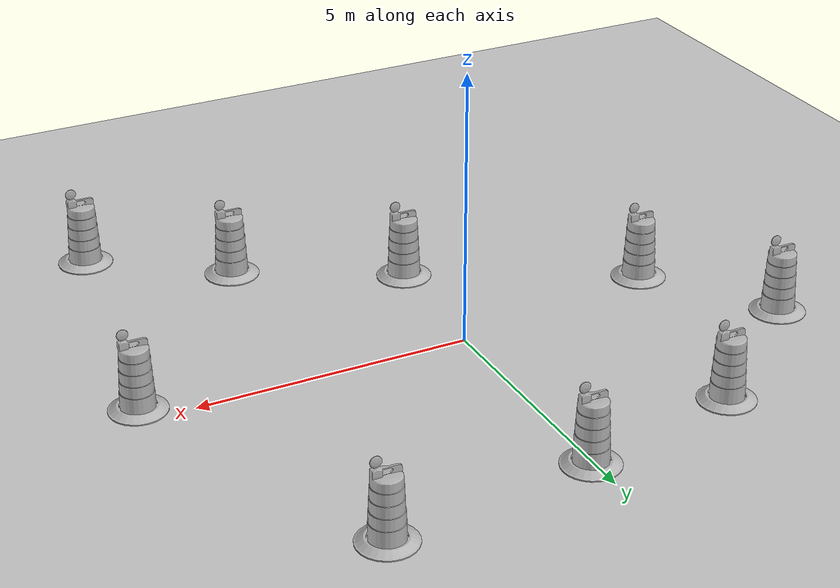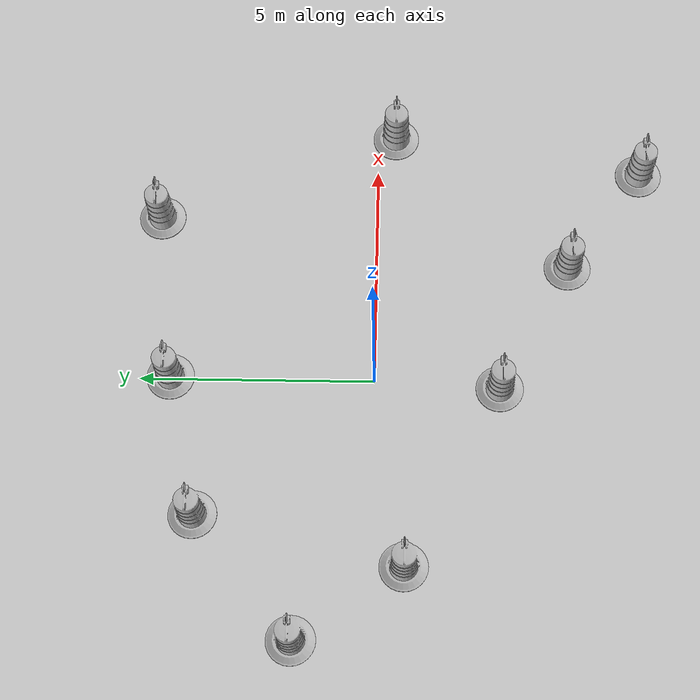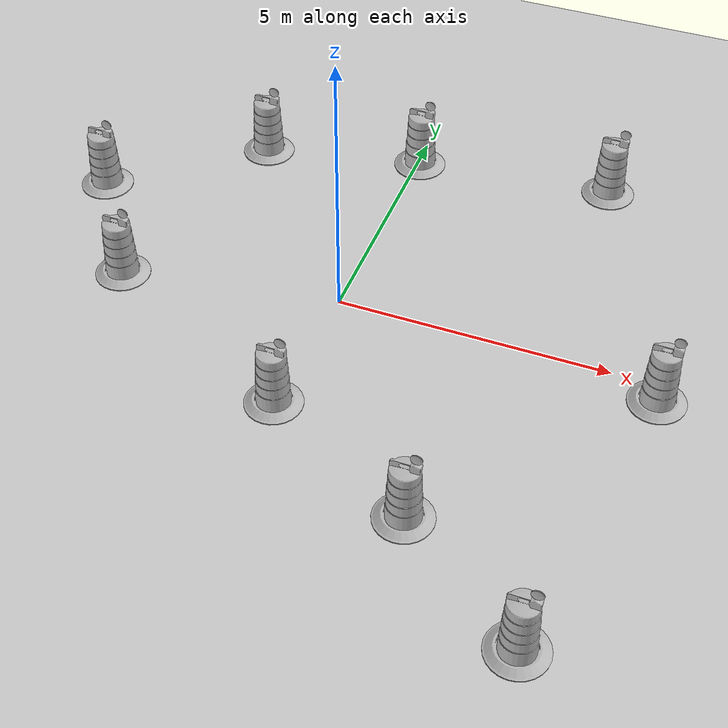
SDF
<sdf version="1.7">
 <world name="default">
  <light name="sun" type="directional">
   <pose>0 0 10 0 -0 0</pose>
   <diffuse>0.8 0.8 0.8 1</diffuse>
   <specular>0.2 0.2 0.2 1</specular>
   <attenuation>
    <range>1000</range>
    <constant>0.9</constant>
    <linear>0.01</linear>
    <quadratic>0.001</quadratic>
   </attenuation>
   <direction>-0.5 0.1 -0.9</direction>
   <spot><inner_angle>0</inner_angle><outer_angle>0</outer_angle><falloff>0</falloff></spot>
  </light>
  <model name="ground_plane">
   <static>1</static>
   <link name="link">
    <collision name="collision">
     <geometry><plane><normal>0 0 1</normal><size>100 100</size></plane></geometry>
     <surface>
      <contact><collide_bitmask>65535</collide_bitmask></contact>
      <friction><ode><mu>100</mu><mu2>50</mu2></ode></friction>
     </surface>
    </collision>
    <visual name="visual">
     <cast_shadows>0</cast_shadows>
     <geometry><plane><normal>0 0 1</normal><size>100 100</size></plane></geometry>
     <material>
      <script><uri>file://media/materials/scripts/gazebo.material</uri><name>Gazebo/Grey</name></script>
     </material>
    </visual>
   </link>
  </model>
  <gravity>0 0 -9.8</gravity>
  <magnetic_field>6e-06 2.3e-05 -4.2e-05</magnetic_field>
  <atmosphere type="adiabatic"/>
  <physics type="ode">
   <max_step_size>0.001</max_step_size>
   <real_time_factor>1</real_time_factor>
   <real_time_update_rate>1000</real_time_update_rate>
  </physics>
  <scene><ambient>0.4 0.4 0.4 1</ambient><background>0.7 0.7 0.7 1</background><shadows>1</shadows></scene>
  <audio><device>default</device></audio>
  <spherical_coordinates>
   <surface_model>EARTH_WGS84</surface_model>
   <latitude_deg>0</latitude_deg>
   <longitude_deg>0</longitude_deg>
   <elevation>0</elevation>
   <heading_deg>0</heading_deg>
  </spherical_coordinates>
  <model name="Construction Barrel">
   <link name="link">
    <inertial>
     <pose>0 0 0.4 0 -0 0</pose>
     <mass>500</mass>
     <inertia><ixx>51.2096</ixx><iyy>51.2096</iyy><izz>25</izz><ixy>0</ixy><ixz>0</ixz><iyz>0</iyz></inertia>
    </inertial>
    <collision name="collision">
     <geometry><mesh><uri>model://construction_barrel/meshes/construction_barrel.dae</uri></mesh></geometry>
    </collision>
    <visual name="visual">
     <geometry><mesh><uri>model://construction_barrel/meshes/construction_barrel.dae</uri></mesh></geometry>
    </visual>
   </link>
   <pose>-0.12703 -2.65862 -0 0 -0 -1.9e-05</pose>
  </model>
  <model name="Construction Barrel_0">
   <link name="link">
    <inertial>
     <pose>0 0 0.4 0 -0 0</pose>
     <mass>500</mass>
     <inertia><ixx>51.2096</ixx><iyy>51.2096</iyy><izz>25</izz><ixy>0</ixy><ixz>0</ixz><iyz>0</iyz></inertia>
    </inertial>
    <collision name="collision">
     <geometry><mesh><uri>model://construction_barrel/meshes/construction_barrel.dae</uri></mesh></geometry>
    </collision>
    <visual name="visual">
     <geometry><mesh><uri>model://construction_barrel/meshes/construction_barrel.dae</uri></mesh></geometry>
    </visual>
   </link>
   <pose>5.85903 -0.389936 -1e-06 1e-06 -2e-06 -1.8e-05</pose>
  </model>
  <model name="Construction Barrel_1">
   <link name="link">
    <inertial>
     <pose>0 0 0.4 0 -0 0</pose>
     <mass>500</mass>
     <inertia><ixx>51.2096</ixx><iyy>51.2096</iyy><izz>25</izz><ixy>0</ixy><ixz>0</ixz><iyz>0</iyz></inertia>
    </inertial>
    <collision name="collision">
     <geometry><mesh><uri>model://construction_barrel/meshes/construction_barrel.dae</uri></mesh></geometry>
    </collision>
    <visual name="visual">
     <geometry><mesh><uri>model://construction_barrel/meshes/construction_barrel.dae</uri></mesh></geometry>
    </visual>
   </link>
   <pose>0.050248 4.34737 -2e-06 1e-06 8e-06 -1.6e-05</pose>
  </model>
  <model name="Construction Barrel_2">
   <link name="link">
    <inertial>
     <pose>0 0 0.4 0 -0 0</pose>
     <mass>500</mass>
     <inertia><ixx>51.2096</ixx><iyy>51.2096</iyy><izz>25</izz><ixy>0</ixy><ixz>0</ixz><iyz>0</iyz></inertia>
    </inertial>
    <collision name="collision">
     <geometry><mesh><uri>model://construction_barrel/meshes/construction_barrel.dae</uri></mesh></geometry>
    </collision>
    <visual name="visual">
     <geometry><mesh><uri>model://construction_barrel/meshes/construction_barrel.dae</uri></mesh></geometry>
    </visual>
   </link>
   <pose>5.00106 -5.82861 -0 2e-06 -1e-06 -1.6e-05</pose>
  </model>
  <model name="Construction Barrel_3">
   <link name="link">
    <inertial>
     <pose>0 0 0.4 0 -0 0</pose>
     <mass>500</mass>
     <inertia><ixx>51.2096</ixx><iyy>51.2096</iyy><izz>25</izz><ixy>0</ixy><ixz>0</ixz><iyz>0</iyz></inertia>
    </inertial>
    <collision name="collision">
     <geometry><mesh><uri>model://construction_barrel/meshes/construction_barrel.dae</uri></mesh></geometry>
    </collision>
    <visual name="visual">
     <geometry><mesh><uri>model://construction_barrel/meshes/construction_barrel.dae</uri></mesh></geometry>
    </visual>
   </link>
   <pose>3.80086 4.76384 -6e-06 0 -1.3e-05 -1.3e-05</pose>
  </model>
  <model name="Construction Barrel_4">
   <link name="link">
    <inertial>
     <pose>0 0 0.4 0 -0 0</pose>
     <mass>500</mass>
     <inertia><ixx>51.2096</ixx><iyy>51.2096</iyy><izz>25</izz><ixy>0</ixy><ixz>0</ixz><iyz>0</iyz></inertia>
    </inertial>
    <collision name="collision">
     <geometry><mesh><uri>model://construction_barrel/meshes/construction_barrel.dae</uri></mesh></geometry>
    </collision>
    <visual name="visual">
     <geometry><mesh><uri>model://construction_barrel/meshes/construction_barrel.dae</uri></mesh></geometry>
    </visual>
   </link>
   <pose>-5.52635 1.5842 -0 0 -0 -1e-05</pose>
  </model>
  <model name="Construction Barrel_6">
   <link name="link">
    <inertial>
     <pose>0 0 0.4 0 -0 0</pose>
     <mass>500</mass>
     <inertia><ixx>51.2096</ixx><iyy>51.2096</iyy><izz>25</izz><ixy>0</ixy><ixz>0</ixz><iyz>0</iyz></inertia>
    </inertial>
    <collision name="collision">
     <geometry><mesh><uri>model://construction_barrel/meshes/construction_barrel.dae</uri></mesh></geometry>
    </collision>
    <visual name="visual">
     <geometry><mesh><uri>model://construction_barrel/meshes/construction_barrel.dae</uri></mesh></geometry>
    </visual>
   </link>
   <pose>-2.96579 3.69998 -3e-06 -4e-06 -5e-06 -8e-06</pose>
  </model>
  <model name="Construction Barrel_7">
   <link name="link">
    <inertial>
     <pose>0 0 0.4 0 -0 0</pose>
     <mass>500</mass>
     <inertia><ixx>51.2096</ixx><iyy>51.2096</iyy><izz>25</izz><ixy>0</ixy><ixz>0</ixz><iyz>0</iyz></inertia>
    </inertial>
    <collision name="collision">
     <geometry><mesh><uri>model://construction_barrel/meshes/construction_barrel.dae</uri></mesh></geometry>
    </collision>
    <visual name="visual">
     <geometry><mesh><uri>model://construction_barrel/meshes/construction_barrel.dae</uri></mesh></geometry>
    </visual>
   </link>
   <pose>2.70298 -4.17243 -1e-06 -0 4e-06 -7e-06</pose>
  </model>
  <model name="Construction Barrel_8">
   <link name="link">
    <inertial>
     <pose>0 0 0.4 0 -0 0</pose>
     <mass>500</mass>
     <inertia><ixx>51.2096</ixx><iyy>51.2096</iyy><izz>25</izz><ixy>0</ixy><ixz>0</ixz><iyz>0</iyz></inertia>
    </inertial>
    <collision name="collision">
     <geometry><mesh><uri>model://construction_barrel/meshes/construction_barrel.dae</uri></mesh></geometry>
    </collision>
    <visual name="visual">
     <geometry><mesh><uri>model://construction_barrel/meshes/construction_barrel.dae</uri></mesh></geometry>
    </visual>
   </link>
   <pose>-4.00191 -0.658919 -1e-06 -8e-06 -2e-06 -4e-06</pose>
  </model>
 </world>
</sdf>
